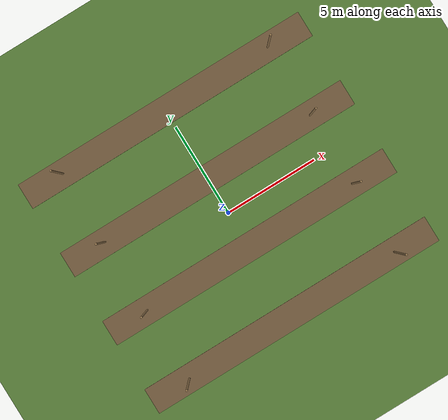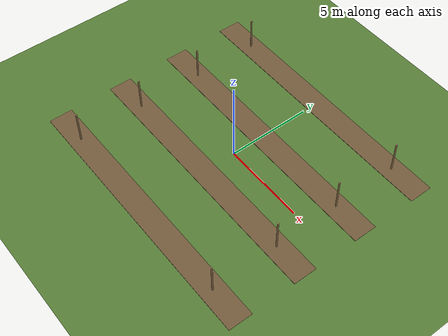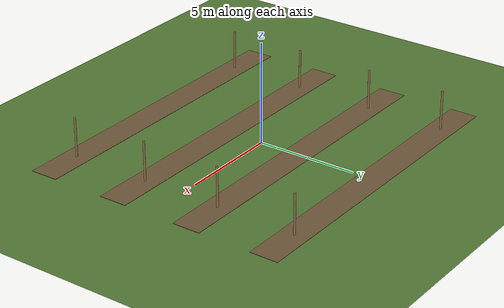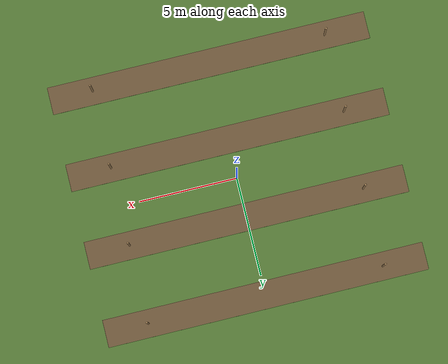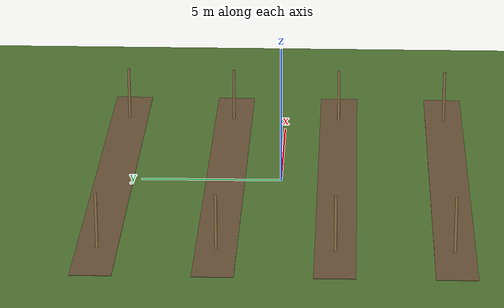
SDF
<sdf version="1.8">
 <world name="bagged_peach_orchard">
  <model name="ground">
   <static>true</static>
   <link name="link">
    <collision name="c">
     <geometry><plane><normal>0 0 1</normal><size>40.0 30.0</size></plane></geometry>
    </collision>
    <visual name="v">
     <geometry><plane><normal>0 0 1</normal><size>40.0 30.0</size></plane></geometry>
     <material>
      <ambient>0.1600 0.2300 0.1000 1</ambient>
      <diffuse>0.3200 0.4600 0.2000 1</diffuse>
      <specular>0.05 0.05 0.05 1</specular>
     </material>
    </visual>
   </link>
  </model>
  <model name="soil_strips">
   <static>true</static>
   <link name="link">
    <visual name="soil_r0_v">
     <pose>0 -6.0000 0.012 0 0 0</pose>
     <geometry><box><size>16.4000 1.4 0.02</size></box></geometry>
     <material>
      <ambient>0.2100 0.1650 0.1100 1</ambient>
      <diffuse>0.4200 0.3300 0.2200 1</diffuse>
      <specular>0.05 0.05 0.05 1</specular>
     </material>
    </visual>
    <visual name="soil_r1_v">
     <pose>0 -2.0000 0.012 0 0 0</pose>
     <geometry><box><size>16.4000 1.4 0.02</size></box></geometry>
     <material>
      <ambient>0.2100 0.1650 0.1100 1</ambient>
      <diffuse>0.4200 0.3300 0.2200 1</diffuse>
      <specular>0.05 0.05 0.05 1</specular>
     </material>
    </visual>
    <visual name="soil_r2_v">
     <pose>0 2.0000 0.012 0 0 0</pose>
     <geometry><box><size>16.4000 1.4 0.02</size></box></geometry>
     <material>
      <ambient>0.2100 0.1650 0.1100 1</ambient>
      <diffuse>0.4200 0.3300 0.2200 1</diffuse>
      <specular>0.05 0.05 0.05 1</specular>
     </material>
    </visual>
    <visual name="soil_r3_v">
     <pose>0 6.0000 0.012 0 0 0</pose>
     <geometry><box><size>16.4000 1.4 0.02</size></box></geometry>
     <material>
      <ambient>0.2100 0.1650 0.1100 1</ambient>
      <diffuse>0.4200 0.3300 0.2200 1</diffuse>
      <specular>0.05 0.05 0.05 1</specular>
     </material>
    </visual>
   </link>
  </model>
  <model name="posts">
   <static>true</static>
   <link name="link">
    <visual name="post0_v">
     <pose>-6.0000 -6.0000 1.0000 0.0000 0.0000 0.0000</pose>
     <geometry><cylinder><radius>0.0500</radius><length>2.0000</length></cylinder></geometry>
     <material>
      <ambient>0.2900 0.2300 0.1500 1</ambient>
      <diffuse>0.5800 0.4600 0.3000 1</diffuse>
      <specular>0.05 0.05 0.05 1</specular>
     </material>
    </visual>
    <collision name="post0_v_c">
     <pose>-6.0000 -6.0000 1.0000 0.0000 0.0000 0.0000</pose>
     <geometry><cylinder><radius>0.0500</radius><length>2.0000</length></cylinder></geometry>
    </collision>
    <visual name="post1_v">
     <pose>-6.0000 -2.0000 1.0000 0.0000 0.0000 0.0000</pose>
     <geometry><cylinder><radius>0.0500</radius><length>2.0000</length></cylinder></geometry>
     <material>
      <ambient>0.2900 0.2300 0.1500 1</ambient>
      <diffuse>0.5800 0.4600 0.3000 1</diffuse>
      <specular>0.05 0.05 0.05 1</specular>
     </material>
    </visual>
    <collision name="post1_v_c">
     <pose>-6.0000 -2.0000 1.0000 0.0000 0.0000 0.0000</pose>
     <geometry><cylinder><radius>0.0500</radius><length>2.0000</length></cylinder></geometry>
    </collision>
    <visual name="post2_v">
     <pose>-6.0000 2.0000 1.0000 0.0000 0.0000 0.0000</pose>
     <geometry><cylinder><radius>0.0500</radius><length>2.0000</length></cylinder></geometry>
     <material>
      <ambient>0.2900 0.2300 0.1500 1</ambient>
      <diffuse>0.5800 0.4600 0.3000 1</diffuse>
      <specular>0.05 0.05 0.05 1</specular>
     </material>
    </visual>
    <collision name="post2_v_c">
     <pose>-6.0000 2.0000 1.0000 0.0000 0.0000 0.0000</pose>
     <geometry><cylinder><radius>0.0500</radius><length>2.0000</length></cylinder></geometry>
    </collision>
    <visual name="post3_v">
     <pose>-6.0000 6.0000 1.0000 0.0000 0.0000 0.0000</pose>
     <geometry><cylinder><radius>0.0500</radius><length>2.0000</length></cylinder></geometry>
     <material>
      <ambient>0.2900 0.2300 0.1500 1</ambient>
      <diffuse>0.5800 0.4600 0.3000 1</diffuse>
      <specular>0.05 0.05 0.05 1</specular>
     </material>
    </visual>
    <collision name="post3_v_c">
     <pose>-6.0000 6.0000 1.0000 0.0000 0.0000 0.0000</pose>
     <geometry><cylinder><radius>0.0500</radius><length>2.0000</length></cylinder></geometry>
    </collision>
    <visual name="post4_v">
     <pose>6.0000 -6.0000 1.0000 0.0000 0.0000 0.0000</pose>
     <geometry><cylinder><radius>0.0500</radius><length>2.0000</length></cylinder></geometry>
     <material>
      <ambient>0.2900 0.2300 0.1500 1</ambient>
      <diffuse>0.5800 0.4600 0.3000 1</diffuse>
      <specular>0.05 0.05 0.05 1</specular>
     </material>
    </visual>
    <collision name="post4_v_c">
     <pose>6.0000 -6.0000 1.0000 0.0000 0.0000 0.0000</pose>
     <geometry><cylinder><radius>0.0500</radius><length>2.0000</length></cylinder></geometry>
    </collision>
    <visual name="post5_v">
     <pose>6.0000 -2.0000 1.0000 0.0000 0.0000 0.0000</pose>
     <geometry><cylinder><radius>0.0500</radius><length>2.0000</length></cylinder></geometry>
     <material>
      <ambient>0.2900 0.2300 0.1500 1</ambient>
      <diffuse>0.5800 0.4600 0.3000 1</diffuse>
      <specular>0.05 0.05 0.05 1</specular>
     </material>
    </visual>
    <collision name="post5_v_c">
     <pose>6.0000 -2.0000 1.0000 0.0000 0.0000 0.0000</pose>
     <geometry><cylinder><radius>0.0500</radius><length>2.0000</length></cylinder></geometry>
    </collision>
    <visual name="post6_v">
     <pose>6.0000 2.0000 1.0000 0.0000 0.0000 0.0000</pose>
     <geometry><cylinder><radius>0.0500</radius><length>2.0000</length></cylinder></geometry>
     <material>
      <ambient>0.2900 0.2300 0.1500 1</ambient>
      <diffuse>0.5800 0.4600 0.3000 1</diffuse>
      <specular>0.05 0.05 0.05 1</specular>
     </material>
    </visual>
    <collision name="post6_v_c">
     <pose>6.0000 2.0000 1.0000 0.0000 0.0000 0.0000</pose>
     <geometry><cylinder><radius>0.0500</radius><length>2.0000</length></cylinder></geometry>
    </collision>
    <visual name="post7_v">
     <pose>6.0000 6.0000 1.0000 0.0000 0.0000 0.0000</pose>
     <geometry><cylinder><radius>0.0500</radius><length>2.0000</length></cylinder></geometry>
     <material>
      <ambient>0.2900 0.2300 0.1500 1</ambient>
      <diffuse>0.5800 0.4600 0.3000 1</diffuse>
      <specular>0.05 0.05 0.05 1</specular>
     </material>
    </visual>
    <collision name="post7_v_c">
     <pose>6.0000 6.0000 1.0000 0.0000 0.0000 0.0000</pose>
     <geometry><cylinder><radius>0.0500</radius><length>2.0000</length></cylinder></geometry>
    </collision>
   </link>
  </model>
 </world>
</sdf>
